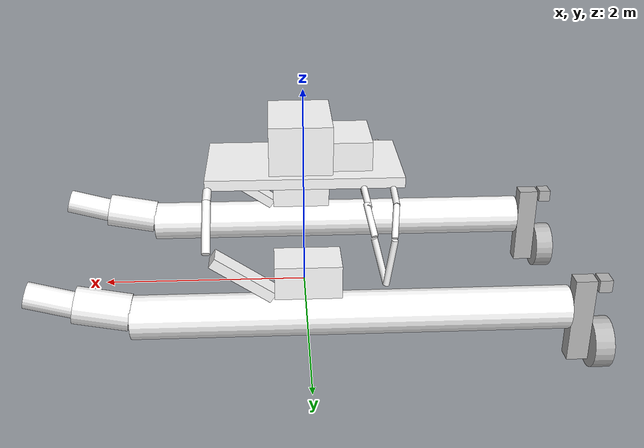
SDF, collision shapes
<sdf version='1.9'>
  <model name='WAM-V'>
    <link name='wamv/base_link'>
      <inertial>
        <pose>-0.01214574898785425 -1.438345618947571e-17 0.2380566801619433 0 0 0</pose>
        <mass>247</mass>
        <inertia>
          <ixx>219.25965887314439</ixx>
          <ixy>4.3150368568427137e-17</ixy>
          <ixz>3.8758299595141699</ixz>
          <iyy>446.87655495951418</iyy>
          <iyz>-8.4574722394117186e-16</iyz>
          <izz>498.16656275303637</izz>
        </inertia>
      </inertial>
      <collision name='wamv/base_link_fixed_joint_lump__left_float_collision'>
        <pose>-0.4 1.03 0.2 0 1.570796326794897 0</pose>
        <geometry>
          <cylinder>
            <length>4</length>
            <radius>0.20000000000000001</radius>
          </cylinder>
        </geometry>
      </collision>
      <collision name='wamv/base_link_fixed_joint_lump__left_mid_float_collision_1'>
        <pose>1.85 1.03 0.3 0 1.38 0</pose>
        <geometry>
          <cylinder>
            <length>0.5</length>
            <radius>0.17000000000000001</radius>
          </cylinder>
        </geometry>
      </collision>
      <collision name='wamv/base_link_fixed_joint_lump__left_front_float_collision_2'>
        <pose>2.3 1.03 0.4 0 1.3 0</pose>
        <geometry>
          <cylinder>
            <length>0.45000000000000001</length>
            <radius>0.12</radius>
          </cylinder>
        </geometry>
      </collision>
      <collision name='wamv/base_link_fixed_joint_lump__front_left_beam_lower_collision_3'>
        <pose>0.9 0.85 1 0.78 0 0</pose>
        <geometry>
          <cylinder>
            <length>0.5</length>
            <radius>0.040000000000000001</radius>
          </cylinder>
        </geometry>
      </collision>
      <collision name='wamv/base_link_fixed_joint_lump__front_left_beam_upper_collision_4'>
        <pose>0.9 0.6 1.18 1.35 0 0</pose>
        <geometry>
          <cylinder>
            <length>0.20000000000000001</length>
            <radius>0.040000000000000001</radius>
          </cylinder>
        </geometry>
      </collision>
      <collision name='wamv/base_link_fixed_joint_lump__mid_left_beam_lower_collision_5'>
        <pose>-0.65 0.99 0.7 0.09999999999999999 0.25 0</pose>
        <geometry>
          <cylinder>
            <length>0.45000000000000001</length>
            <radius>0.029999999999999999</radius>
          </cylinder>
        </geometry>
      </collision>
      <collision name='wamv/base_link_fixed_joint_lump__mid_left_beam_medium_collision_6'>
        <pose>-0.57 0.87 1.05 0.7500000000000002 0.2500000000000001 0</pose>
        <geometry>
          <cylinder>
            <length>0.32000000000000001</length>
            <radius>0.029999999999999999</radius>
          </cylinder>
        </geometry>
      </collision>
      <collision name='wamv/base_link_fixed_joint_lump__mid_left_beam_upper_collision_7'>
        <pose>-0.55 0.65 1.17 1.35 0.2500000000000001 -1.43230569624784e-17</pose>
        <geometry>
          <cylinder>
            <length>0.29999999999999999</length>
            <radius>0.029999999999999999</radius>
          </cylinder>
        </geometry>
      </collision>
      <collision name='wamv/base_link_fixed_joint_lump__rear_left_beam_lower_collision_8'>
        <pose>-0.74 1.03 0.7 0 -0.15 0</pose>
        <geometry>
          <cylinder>
            <length>0.45000000000000001</length>
            <radius>0.029999999999999999</radius>
          </cylinder>
        </geometry>
      </collision>
      <collision name='wamv/base_link_fixed_joint_lump__rear_left_beam_medium_collision_9'>
        <pose>-0.79 0.91 1.05 0.7500000000000001 -0.15 -7.017695054745588e-18</pose>
        <geometry>
          <cylinder>
            <length>0.32000000000000001</length>
            <radius>0.029999999999999999</radius>
          </cylinder>
        </geometry>
      </collision>
      <collision name='wamv/base_link_fixed_joint_lump__rear_left_beam_upper_collision_10'>
        <pose>-0.8100000000000001 0.67 1.18 1.45 -0.15 0</pose>
        <geometry>
          <cylinder>
            <length>0.29999999999999999</length>
            <radius>0.029999999999999999</radius>
          </cylinder>
        </geometry>
      </collision>
      <collision name='wamv/base_link_fixed_joint_lump__left_joint_collision_11'>
        <pose>0.58 1.03 0.6 0 -0.5999999999999999 0</pose>
        <geometry>
          <box>
            <size>0.65 0.2 0.1</size>
          </box>
        </geometry>
      </collision>
      <collision name='wamv/base_link_fixed_joint_lump__right_float_collision_12'>
        <pose>-0.4 -1.03 0.2 0 1.570796326794897 0</pose>
        <geometry>
          <cylinder>
            <length>4</length>
            <radius>0.20000000000000001</radius>
          </cylinder>
        </geometry>
      </collision>
      <collision name='wamv/base_link_fixed_joint_lump__right_mid_float_collision_13'>
        <pose>1.85 -1.03 0.3 0 1.38 0</pose>
        <geometry>
          <cylinder>
            <length>0.5</length>
            <radius>0.17000000000000001</radius>
          </cylinder>
        </geometry>
      </collision>
      <collision name='wamv/base_link_fixed_joint_lump__right_front_float_collision_14'>
        <pose>2.3 -1.03 0.4 0 1.3 0</pose>
        <geometry>
          <cylinder>
            <length>0.45000000000000001</length>
            <radius>0.12</radius>
          </cylinder>
        </geometry>
      </collision>
      <collision name='wamv/base_link_fixed_joint_lump__front_right_beam_lower_collision_15'>
        <pose>0.9 -0.85 1 -0.78 0 0</pose>
        <geometry>
          <cylinder>
            <length>0.5</length>
            <radius>0.040000000000000001</radius>
          </cylinder>
        </geometry>
      </collision>
      <collision name='wamv/base_link_fixed_joint_lump__front_right_beam_upper_collision_16'>
        <pose>0.9 -0.6 1.18 -1.35 0 0</pose>
        <geometry>
          <cylinder>
            <length>0.20000000000000001</length>
            <radius>0.040000000000000001</radius>
          </cylinder>
        </geometry>
      </collision>
      <collision name='wamv/base_link_fixed_joint_lump__mid_right_beam_lower_collision_17'>
        <pose>-0.65 -0.99 0.7 -0.09999999999999999 0.25 0</pose>
        <geometry>
          <cylinder>
            <length>0.45000000000000001</length>
            <radius>0.029999999999999999</radius>
          </cylinder>
        </geometry>
      </collision>
      <collision name='wamv/base_link_fixed_joint_lump__mid_right_beam_medium_collision_18'>
        <pose>-0.57 -0.87 1.05 -0.7500000000000002 0.2500000000000001 0</pose>
        <geometry>
          <cylinder>
            <length>0.32000000000000001</length>
            <radius>0.029999999999999999</radius>
          </cylinder>
        </geometry>
      </collision>
      <collision name='wamv/base_link_fixed_joint_lump__mid_right_beam_upper_collision_19'>
        <pose>-0.55 -0.65 1.17 -1.35 0.2500000000000001 1.43230569624784e-17</pose>
        <geometry>
          <cylinder>
            <length>0.29999999999999999</length>
            <radius>0.029999999999999999</radius>
          </cylinder>
        </geometry>
      </collision>
      <collision name='wamv/base_link_fixed_joint_lump__rear_right_beam_lower_collision_20'>
        <pose>-0.74 -1.03 0.7 0 -0.15 0</pose>
        <geometry>
          <cylinder>
            <length>0.45000000000000001</length>
            <radius>0.029999999999999999</radius>
          </cylinder>
        </geometry>
      </collision>
      <collision name='wamv/base_link_fixed_joint_lump__rear_right_beam_medium_collision_21'>
        <pose>-0.79 -0.91 1.05 -0.7500000000000001 -0.15 7.017695054745588e-18</pose>
        <geometry>
          <cylinder>
            <length>0.32000000000000001</length>
            <radius>0.029999999999999999</radius>
          </cylinder>
        </geometry>
      </collision>
      <collision name='wamv/base_link_fixed_joint_lump__rear_right_beam_upper_collision_22'>
        <pose>-0.8100000000000001 -0.67 1.18 -1.45 -0.15 0</pose>
        <geometry>
          <cylinder>
            <length>0.29999999999999999</length>
            <radius>0.029999999999999999</radius>
          </cylinder>
        </geometry>
      </collision>
      <collision name='wamv/base_link_fixed_joint_lump__right_joint_collision_23'>
        <pose>0.58 -1.03 0.6 0 -0.5999999999999999 0</pose>
        <geometry>
          <box>
            <size>0.65 0.2 0.1</size>
          </box>
        </geometry>
      </collision>
      <collision name='wamv/base_link_fixed_joint_lump__top_base_collision_24'>
        <pose>0 0 1.25 0 0 0</pose>
        <geometry>
          <box>
            <size>1.85 1 0.1</size>
          </box>
        </geometry>
      </collision>
      <collision name='wamv/base_link_fixed_joint_lump__cpu_case_1_collision_collision_25'>
        <pose>0.035 0 1.53 0 0 0</pose>
        <geometry>
          <box>
            <size>0.595 0.83 0.47</size>
          </box>
        </geometry>
      </collision>
      <collision name='wamv/base_link_fixed_joint_lump__cpu_case_2_collision_collision_26'>
        <pose>-0.45 0 1.438 0 0 0</pose>
        <geometry>
          <box>
            <size>0.375 0.64 0.28</size>
          </box>
        </geometry>
      </collision>
      <collision name='wamv/base_link_fixed_joint_lump__left_battery_collision_collision_27'>
        <pose>0 1 0.6 0 0 0</pose>
        <geometry>
          <box>
            <size>0.6 0.4 0.31</size>
          </box>
        </geometry>
      </collision>
      <collision name='wamv/base_link_fixed_joint_lump__right_battery_collision_collision_28'>
        <pose>0 -1 0.6 0 0 0</pose>
        <geometry>
          <box>
            <size>0.6 0.4 0.31</size>
          </box>
        </geometry>
      </collision>
      <visual name='wamv/base_link_visual'>
        <pose>0 0 0 0 0 0</pose>
        <geometry>
          <mesh>
            <scale>1 1 1</scale>
            <uri>model://wamv_description/models/WAM-V-Base/mesh/WAM-V-Base.dae</uri>
          </mesh>
        </geometry>
        <material>
          <diffuse>1 1 1 1</diffuse>
          <specular>1 1 1 1</specular>
          <pbr>
            <metal>
              <albedo_map>model://wamv_description/models/WAM-V-Base/mesh/WAM-V_Albedo.png</albedo_map>
              <normal_map>model://wamv_description/models/WAM-V-Base/mesh/WAM-V_Normal.png</normal_map>
              <roughness_map>model://wamv_description/models/WAM-V-Base/mesh/WAM-V_Roughness.png</roughness_map>
              <metalness_map>model://wamv_description/models/WAM-V-Base/mesh/WAM-V_Metalness.png</metalness_map>
            </metal>
          </pbr>
        </material>
      </visual>
      <visual name='wamv/base_link_fixed_joint_lump__wamv/cpu_cases_link_visual_1'>
        <pose>-0.077 0 0 0 0 0</pose>
        <geometry>
          <mesh>
            <scale>1 1 1</scale>
            <uri>model://vrx_gazebo/models/cpu_cases/mesh/cpu_cases.dae</uri>
          </mesh>
        </geometry>
        <material>
          <diffuse>1 1 1 1</diffuse>
          <specular>1 1 1 1</specular>
          <pbr>
            <metal>
              <albedo_map>model://vrx_gazebo/models/cpu_cases/mesh/cpu_cases_Albedo.png</albedo_map>
              <normal_map>model://vrx_gazebo/models/cpu_cases/mesh/cpu_cases_Normal.png</normal_map>
              <roughness_map>model://vrx_gazebo/models/cpu_cases/mesh/cpu_cases_Roughness.png</roughness_map>
              <metalness_map>model://vrx_gazebo/models/cpu_cases/mesh/cpu_cases_Metalness.png</metalness_map>
            </metal>
          </pbr>
        </material>
      </visual>
      <visual name='wamv/base_link_fixed_joint_lump__wamv/left_battery_link_visual_2'>
        <pose>0 -0.03000000000000003 0 0 0 0</pose>
        <geometry>
          <mesh>
            <scale>1 1 1</scale>
            <uri>model://vrx_gazebo/models/battery/mesh/battery.dae</uri>
          </mesh>
        </geometry>
        <material>
          <diffuse>1 1 1 1</diffuse>
          <specular>1 1 1 1</specular>
          <pbr>
            <metal>
              <albedo_map>model://vrx_gazebo/models/battery/mesh/battery_Albedo.png</albedo_map>
              <normal_map>model://vrx_gazebo/models/battery/mesh/battery_Normal.png</normal_map>
              <roughness_map>model://vrx_gazebo/models/battery/mesh/battery_Roughness.png</roughness_map>
              <metalness_map>model://vrx_gazebo/models/battery/mesh/battery_Metalness.png</metalness_map>
            </metal>
          </pbr>
        </material>
      </visual>
      <visual name='wamv/base_link_fixed_joint_lump__wamv/right_battery_link_visual_3'>
        <pose>0 -2.03 0 0 0 0</pose>
        <geometry>
          <mesh>
            <scale>1 1 1</scale>
            <uri>model://vrx_gazebo/models/battery/mesh/battery.dae</uri>
          </mesh>
        </geometry>
        <material>
          <diffuse>1 1 1 1</diffuse>
          <specular>1 1 1 1</specular>
          <pbr>
            <metal>
              <albedo_map>model://vrx_gazebo/models/battery/mesh/battery_Albedo.png</albedo_map>
              <normal_map>model://vrx_gazebo/models/battery/mesh/battery_Normal.png</normal_map>
              <roughness_map>model://vrx_gazebo/models/battery/mesh/battery_Roughness.png</roughness_map>
              <metalness_map>model://vrx_gazebo/models/battery/mesh/battery_Metalness.png</metalness_map>
            </metal>
          </pbr>
        </material>
      </visual>
      <sensor name='contact_sensor' type='contact'>
        <contact>
          <collision>wamv/base_link_fixed_joint_lump__top_base_collision_24</collision>
          <collision>wamv/base_link_fixed_joint_lump__left_float_collision</collision>
          <collision>wamv/base_link_fixed_joint_lump__left_mid_float_collision_1</collision>
          <collision>wamv/base_link_fixed_joint_lump__left_front_float_collision_2</collision>
          <collision>wamv/base_link_fixed_joint_lump__right_float_collision_12</collision>
          <collision>wamv/base_link_fixed_joint_lump__right_mid_float_collision_13</collision>
          <collision>wamv/base_link_fixed_joint_lump__right_front_float_collision_14</collision>
          <topic>/vrx/contacts</topic>
        </contact>
        <always_on>true</always_on>
        <update_rate>5</update_rate>
      </sensor>
    </link>
    <joint name='wamv/left_chassis_engine_joint' type='revolute'>
      <pose relative_to='wamv/base_link'>-2.373776 1.027135 0.318237 0 0 0</pose>
      <parent>wamv/base_link</parent>
      <child>wamv/left_engine_link</child>
      <axis>
        <xyz>0 0 1</xyz>
        <limit>
          <lower>-3.1415926535897931</lower>
          <upper>3.1415926535897931</upper>
          <effort>10</effort>
          <velocity>10</velocity>
        </limit>
        <dynamics>
          <spring_reference>0</spring_reference>
          <spring_stiffness>0</spring_stiffness>
        </dynamics>
      </axis>
    </joint>
    <link name='wamv/left_engine_link'>
      <pose relative_to='wamv/left_chassis_engine_joint'>0 0 0 0 0 0</pose>
      <inertial>
        <pose>0 0 0 0 0 0</pose>
        <mass>15</mass>
        <inertia>
          <ixx>0.88924499999999995</ixx>
          <ixy>0</ixy>
          <ixz>0</ixz>
          <iyy>0.91112499999999996</iyy>
          <iyz>0</iyz>
          <izz>0.078125</izz>
        </inertia>
      </inertial>
      <collision name='wamv/left_engine_link_fixed_joint_lump__left_engine_vertical_axis_collision_collision'>
        <pose>-0.16 0 -0.24 0 0 0</pose>
        <geometry>
          <box>
            <size>0.2 0.15 0.83</size>
          </box>
        </geometry>
      </collision>
      <collision name='wamv/left_engine_link_fixed_joint_lump__left_engine_rear_end_collision_collision_1'>
        <pose>-0.34 0 0.12 0 0 0</pose>
        <geometry>
          <box>
            <size>0.12 0.15 0.12</size>
          </box>
        </geometry>
      </collision>
      <visual name='wamv/left_engine_link_visual'>
        <pose>0 0 0 0 0 0</pose>
        <geometry>
          <mesh>
            <scale>1 1 1</scale>
            <uri>model://wamv_description/models/engine/mesh/engine.dae</uri>
          </mesh>
        </geometry>
      </visual>
    </link>
    <joint name='wamv/left_engine_propeller_joint' type='revolute'>
      <pose relative_to='wamv/left_engine_link'>-0.278156 0 -0.509371 0 0 0</pose>
      <parent>wamv/left_engine_link</parent>
      <child>wamv/left_propeller_link</child>
      <axis>
        <xyz>1 0 0</xyz>
        <limit>
          <effort>100</effort>
          <velocity>100</velocity>
          <lower>-10000000000000000</lower>
          <upper>10000000000000000</upper>
        </limit>
        <dynamics>
          <damping>0.050000000000000003</damping>
          <friction>0.050000000000000003</friction>
          <spring_reference>0</spring_reference>
          <spring_stiffness>0</spring_stiffness>
        </dynamics>
      </axis>
    </joint>
    <link name='wamv/left_propeller_link'>
      <pose relative_to='wamv/left_engine_propeller_joint'>0 0 0 0 0 0</pose>
      <inertial>
        <pose>0 0 0 0 0 0</pose>
        <mass>0.5</mass>
        <inertia>
          <ixx>0.0085450000000000005</ixx>
          <ixy>0</ixy>
          <ixz>0</ixz>
          <iyy>0.0085450000000000005</iyy>
          <iyz>0</iyz>
          <izz>0.0144</izz>
        </inertia>
      </inertial>
      <collision name='wamv/left_propeller_link_fixed_joint_lump__left_propeller_collision_collision'>
        <pose>-0.08 0 0 0 1.570796326794897 0</pose>
        <geometry>
          <cylinder>
            <length>0.17999999999999999</length>
            <radius>0.23999999999999999</radius>
          </cylinder>
        </geometry>
      </collision>
      <visual name='wamv/left_propeller_link_visual'>
        <pose>0 0 0 0 0 0</pose>
        <geometry>
          <mesh>
            <scale>1 1 1</scale>
            <uri>model://wamv_description/models/propeller/mesh/propeller.dae</uri>
          </mesh>
        </geometry>
      </visual>
    </link>
    <joint name='wamv/right_chassis_engine_joint' type='revolute'>
      <pose relative_to='wamv/base_link'>-2.373776 -1.027135 0.318237 0 0 0</pose>
      <parent>wamv/base_link</parent>
      <child>wamv/right_engine_link</child>
      <axis>
        <xyz>0 0 1</xyz>
        <limit>
          <lower>-3.1415926535897931</lower>
          <upper>3.1415926535897931</upper>
          <effort>10</effort>
          <velocity>10</velocity>
        </limit>
        <dynamics>
          <spring_reference>0</spring_reference>
          <spring_stiffness>0</spring_stiffness>
        </dynamics>
      </axis>
    </joint>
    <link name='wamv/right_engine_link'>
      <pose relative_to='wamv/right_chassis_engine_joint'>0 0 0 0 0 0</pose>
      <inertial>
        <pose>0 0 0 0 0 0</pose>
        <mass>15</mass>
        <inertia>
          <ixx>0.88924499999999995</ixx>
          <ixy>0</ixy>
          <ixz>0</ixz>
          <iyy>0.91112499999999996</iyy>
          <iyz>0</iyz>
          <izz>0.078125</izz>
        </inertia>
      </inertial>
      <collision name='wamv/right_engine_link_fixed_joint_lump__right_engine_vertical_axis_collision_collision'>
        <pose>-0.16 0 -0.24 0 0 0</pose>
        <geometry>
          <box>
            <size>0.2 0.15 0.83</size>
          </box>
        </geometry>
      </collision>
      <collision name='wamv/right_engine_link_fixed_joint_lump__right_engine_rear_end_collision_collision_1'>
        <pose>-0.34 0 0.12 0 0 0</pose>
        <geometry>
          <box>
            <size>0.12 0.15 0.12</size>
          </box>
        </geometry>
      </collision>
      <visual name='wamv/right_engine_link_visual'>
        <pose>0 0 0 0 0 0</pose>
        <geometry>
          <mesh>
            <scale>1 1 1</scale>
            <uri>model://wamv_description/models/engine/mesh/engine.dae</uri>
          </mesh>
        </geometry>
      </visual>
    </link>
    <joint name='wamv/right_engine_propeller_joint' type='revolute'>
      <pose relative_to='wamv/right_engine_link'>-0.278156 0 -0.509371 0 0 0</pose>
      <parent>wamv/right_engine_link</parent>
      <child>wamv/right_propeller_link</child>
      <axis>
        <xyz>1 0 0</xyz>
        <limit>
          <effort>100</effort>
          <velocity>100</velocity>
          <lower>-10000000000000000</lower>
          <upper>10000000000000000</upper>
        </limit>
        <dynamics>
          <damping>0.050000000000000003</damping>
          <friction>0.050000000000000003</friction>
          <spring_reference>0</spring_reference>
          <spring_stiffness>0</spring_stiffness>
        </dynamics>
      </axis>
    </joint>
    <link name='wamv/right_propeller_link'>
      <pose relative_to='wamv/right_engine_propeller_joint'>0 0 0 0 0 0</pose>
      <inertial>
        <pose>0 0 0 0 0 0</pose>
        <mass>0.5</mass>
        <inertia>
          <ixx>0.0085450000000000005</ixx>
          <ixy>0</ixy>
          <ixz>0</ixz>
          <iyy>0.0085450000000000005</iyy>
          <iyz>0</iyz>
          <izz>0.0144</izz>
        </inertia>
      </inertial>
      <collision name='wamv/right_propeller_link_fixed_joint_lump__right_propeller_collision_collision'>
        <pose>-0.08 0 0 0 1.570796326794897 0</pose>
        <geometry>
          <cylinder>
            <length>0.17999999999999999</length>
            <radius>0.23999999999999999</radius>
          </cylinder>
        </geometry>
      </collision>
      <visual name='wamv/right_propeller_link_visual'>
        <pose>0 0 0 0 0 0</pose>
        <geometry>
          <mesh>
            <scale>1 1 1</scale>
            <uri>model://wamv_description/models/propeller/mesh/propeller.dae</uri>
          </mesh>
        </geometry>
      </visual>
    </link>
    <enable_wind>true</enable_wind>
    <plugin name='gz::sim::systems::Thruster' filename='gz-sim-thruster-system'>
      <joint_name>wamv/left_engine_propeller_joint</joint_name>
      <thrust_coefficient>0.004422</thrust_coefficient>
      <fluid_density>1000</fluid_density>
      <propeller_diameter>0.2</propeller_diameter>
      <velocity_control>true</velocity_control>
      <max_thrust_cmd>2353.53383667818</max_thrust_cmd>
      <namespace>wamv</namespace>
      <topic>thrusters/left/thrust</topic>
      <name>left</name>
    </plugin>
    <plugin name='gz::sim::systems::JointPositionController' filename='gz-sim-joint-position-controller-system'>
      <joint_name>wamv/left_chassis_engine_joint</joint_name>
      <use_velocity_commands>true</use_velocity_commands>
      <topic>wamv/thrusters/left/pos</topic>
      <name>left</name>
    </plugin>
    <plugin name='gz::sim::systems::Thruster' filename='gz-sim-thruster-system'>
      <joint_name>wamv/right_engine_propeller_joint</joint_name>
      <thrust_coefficient>0.004422</thrust_coefficient>
      <fluid_density>1000</fluid_density>
      <propeller_diameter>0.2</propeller_diameter>
      <velocity_control>true</velocity_control>
      <max_thrust_cmd>2353.53383667818</max_thrust_cmd>
      <namespace>wamv</namespace>
      <topic>thrusters/right/thrust</topic>
      <name>right</name>
    </plugin>
    <plugin name='gz::sim::systems::JointPositionController' filename='gz-sim-joint-position-controller-system'>
      <joint_name>wamv/right_chassis_engine_joint</joint_name>
      <use_velocity_commands>true</use_velocity_commands>
      <topic>wamv/thrusters/right/pos</topic>
      <name>right</name>
    </plugin>
    <plugin name='vrx::Surface' filename='libSurface.so'>
      <link_name>wamv/base_link</link_name>
      <hull_length>4.9</hull_length>
      <hull_radius>0.213</hull_radius>
      <fluid_level>0</fluid_level>
      <points>
        <point>0.6 1.03 0</point>
        <point>-1.4 1.03 0</point>
      </points>
      <wavefield>
        <topic>/vrx/wavefield/parameters</topic>
      </wavefield>
    </plugin>
    <plugin name='vrx::Surface' filename='libSurface.so'>
      <link_name>wamv/base_link</link_name>
      <hull_length>4.9</hull_length>
      <hull_radius>0.213</hull_radius>
      <fluid_level>0</fluid_level>
      <points>
        <point>0.6 -1.03 0</point>
        <point>-1.4 -1.03 0</point>
      </points>
      <wavefield>
        <topic>/vrx/wavefield/parameters</topic>
      </wavefield>
    </plugin>
    <plugin name='vrx::SimpleHydrodynamics' filename='libSimpleHydrodynamics.so'>
      <link_name>wamv/base_link</link_name>
      <xDotU>0.0</xDotU>
      <yDotV>0.0</yDotV>
      <nDotR>0.0</nDotR>
      <xU>100.0</xU>
      <xUU>150.0</xUU>
      <yV>100.0</yV>
      <yVV>100.0</yVV>
      <zW>500.0</zW>
      <kP>300.0</kP>
      <kPP>600.0</kPP>
      <mQ>900.0</mQ>
      <mQQ>900.0</mQQ>
      <nR>800.0</nR>
      <nRR>800.0</nRR>
    </plugin>
    <plugin name='gz::sim::systems::DetachableJoint' filename='gz-sim-detachable-joint-system'>
      <parent_link>wamv/base_link</parent_link>
      <child_model>platform</child_model>
      <child_link>dummy_upper</child_link>
      <topic>/vrx/release</topic>
      <suppress_child_warning>true</suppress_child_warning>
    </plugin>
    <plugin name='gz::sim::systems::PosePublisher' filename='libgz-sim-pose-publisher-system.so'>
      <publish_link_pose>false</publish_link_pose>
      <publish_sensor_pose>true</publish_sensor_pose>
      <publish_collision_pose>false</publish_collision_pose>
      <publish_visual_pose>false</publish_visual_pose>
      <publish_nested_model_pose>false</publish_nested_model_pose>
      <publish_model_pose>false</publish_model_pose>
      <use_pose_vector_msg>true</use_pose_vector_msg>
      <static_publisher>false</static_publisher>
      <static_update_frequency>1</static_update_frequency>
    </plugin>
    <plugin name='gz::sim::systems::JointStatePublisher' filename='gz-sim-joint-state-publisher-system'/>
    <frame name='wamv/chasis_cpu_cases_joint' attached_to='wamv/base_link'>
      <pose>-0.15 0 1.53 0 -0 0</pose>
    </frame>
    <frame name='wamv/cpu_cases_link' attached_to='wamv/chasis_cpu_cases_joint'/>
    <frame name='wamv/left_chasis_battery_joint' attached_to='wamv/base_link'>
      <pose>0 1 0.45 0 -0 0</pose>
    </frame>
    <frame name='wamv/left_battery_link' attached_to='wamv/left_chasis_battery_joint'/>
    <frame name='wamv/right_chasis_battery_joint' attached_to='wamv/base_link'>
      <pose>0 -1 0.45 0 -0 0</pose>
    </frame>
    <frame name='wamv/right_battery_link' attached_to='wamv/right_chasis_battery_joint'/>
  </model>
</sdf>
